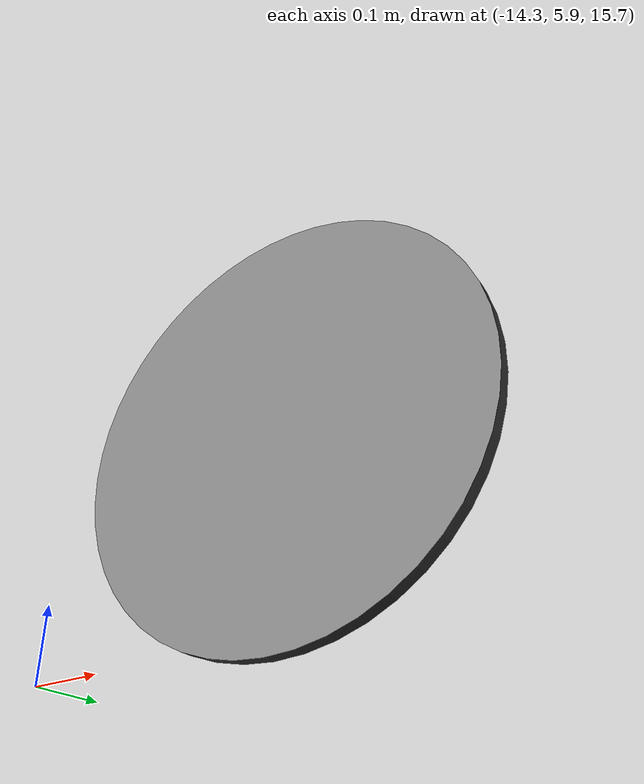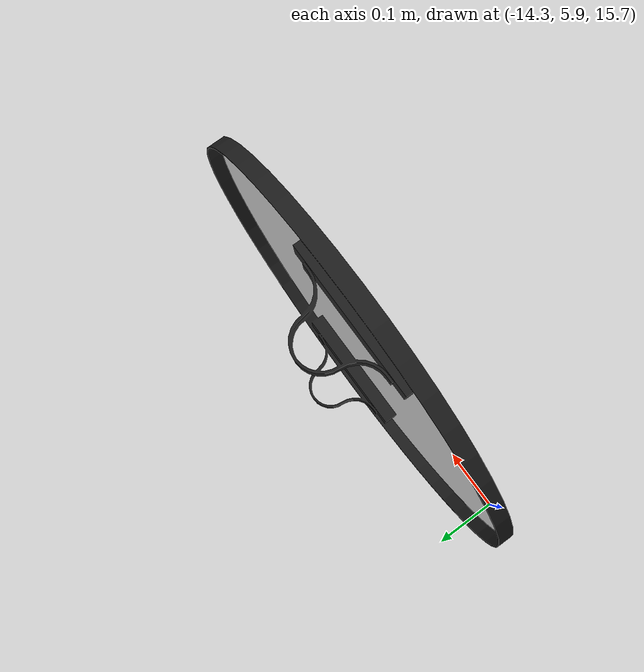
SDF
<?xml version="1.0" ?>
<sdf version="1.6">
  <model name="T_30">
    <static>true</static>
    <link name="link">
      <visual name="visual">
        <geometry>
          <mesh>
            <scale>1 1 1</scale>
            <uri>model://T_30/meshes/T_30.dae</uri>
          </mesh>
        </geometry>
      </visual>
    </link>
  </model>
</sdf>
